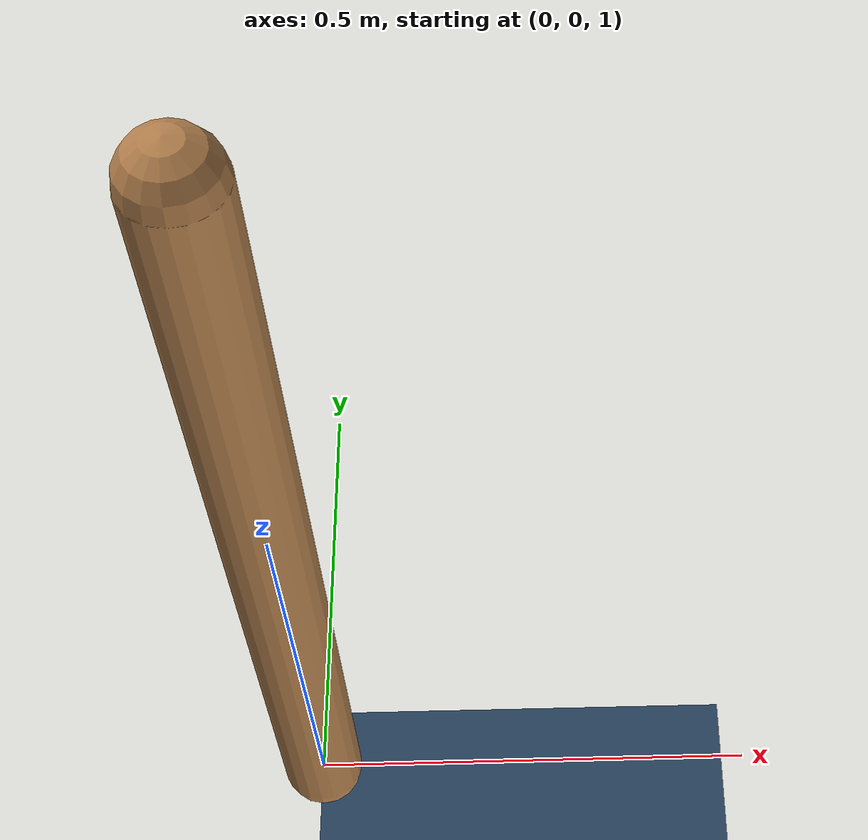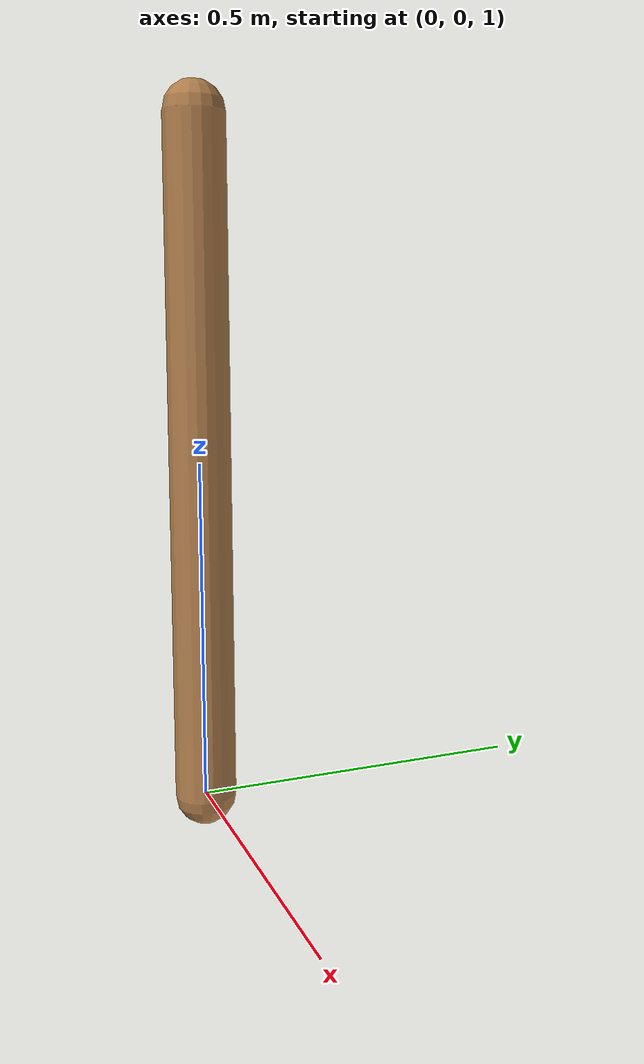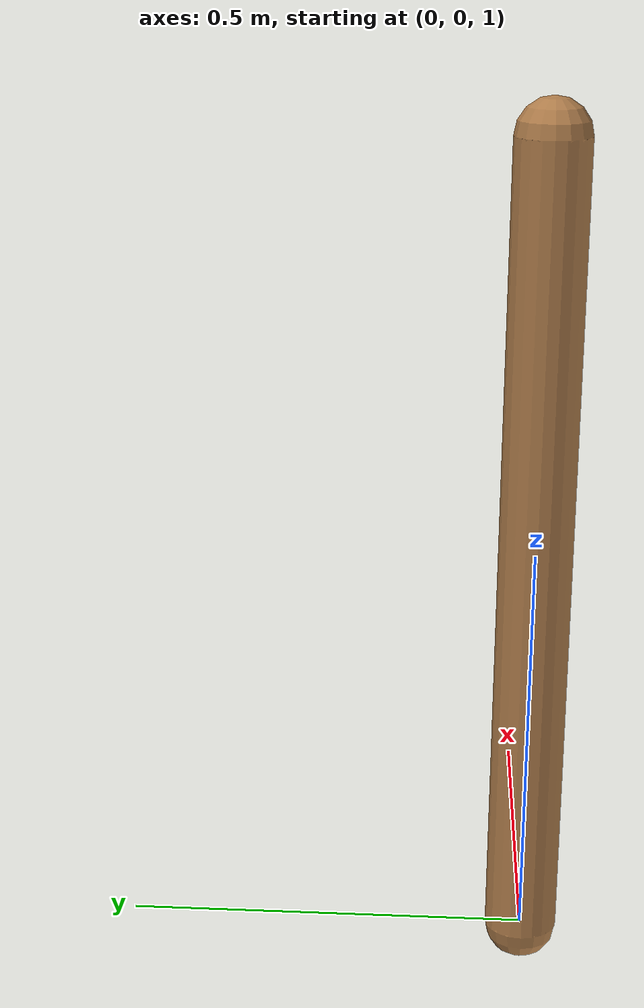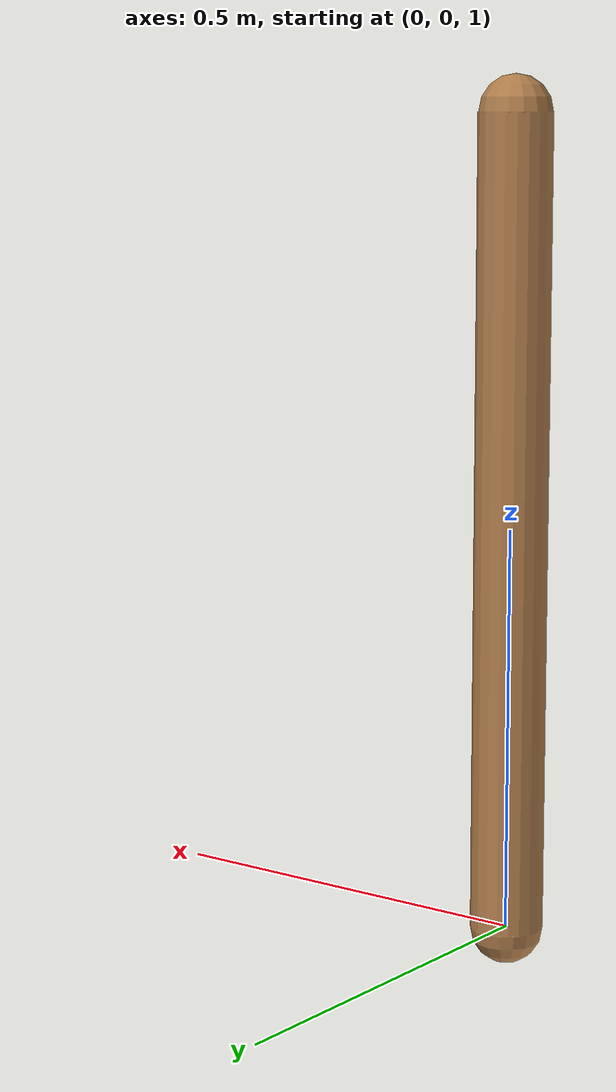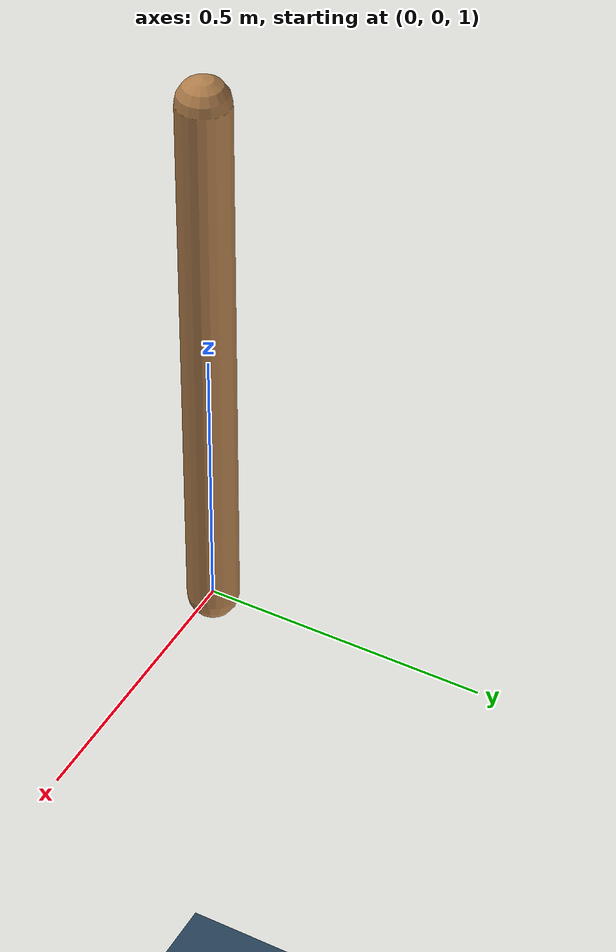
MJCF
<mujoco model="pendulum">
  <include file="./common/visual.xml"/>
  <include file="./common/skybox.xml"/>
  <include file="./common/materials.xml"/>

  <option timestep="0.01" integrator="RK4">
    <flag contact="disable" energy="enable"/>
  </option>

  <default>
    <default class="pole">
      <joint type="hinge" axis="0 1 0"  damping="0.0"/>
      <geom type="capsule" fromto="0 0 0 0 0 1" size="0.045" material="self" mass="1"/>
    </default>
  </default>

  <worldbody>
    <light name="light" pos="0 0 6"/>
    <camera name="fixed" pos="0 -4 1" zaxis="0 -1 0"/>
    <camera name="lookatpole" mode="targetbody" target="pole_1" pos="0 -2 2"/>
    <geom name="floor" pos="0 0 -0.05" size="4 4 .2" type="plane" material="grid"/>
    <body name="pole_1" childclass="pole" pos='0 0 1.0'>
      <joint name="hinge_1"/>
      <geom name="pole_1"/>

    </body>
  </worldbody>

  <actuator>
    <motor name="torque" joint="hinge_1" gear="40" ctrlrange="-1 1" ctrllimited="true"/>
  </actuator>
</mujoco>

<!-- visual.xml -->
<mujoco>
    <visual>
        <headlight ambient=".4 .4 .4" diffuse=".8 .8 .8" specular="0.1 0.1 0.1"/>
        <map znear=".01"/>
        <quality shadowsize="2048"/>
    </visual>
</mujoco>

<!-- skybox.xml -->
<mujoco>
    <asset>
        <texture name="skybox" type="skybox" builtin="gradient" rgb1=".4 .6 .8" rgb2="0 0 0"
                 width="800" height="800" mark="random" markrgb="1 1 1"/>
    </asset>
</mujoco>

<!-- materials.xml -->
<!--
Common textures, colors and materials to be used throughout this suite. Some
materials such as xxx_highlight are activated on occurence of certain events,
for example receiving a positive reward.
-->
<mujoco>
    <asset>
        <texture name="grid" type="2d" builtin="checker" rgb1=".1 .2 .3" rgb2=".2 .3 .4" width="300" height="300" mark="edge" markrgb=".2 .3 .4"/>
        <material name="grid" texture="grid" texrepeat="1 1" texuniform="true" reflectance=".2"/>
        <material name="self" rgba=".7 .5 .3 1"/>
        <material name="self_default" rgba=".7 .5 .3 1"/>
        <material name="self_highlight" rgba="0 .5 .3 1"/>
        <material name="effector" rgba=".7 .4 .2 1"/>
        <material name="effector_default" rgba=".7 .4 .2 1"/>
        <material name="effector_highlight" rgba="0 .5 .3 1"/>
        <material name="decoration" rgba=".3 .5 .7 1"/>
        <material name="eye" rgba="0 .2 1 1"/>
        <material name="target" rgba=".6 .3 .3 1"/>
        <material name="target_default" rgba=".6 .3 .3 1"/>
        <material name="target_highlight" rgba=".6 .3 .3 .4"/>
        <material name="site" rgba=".5 .5 .5 .3"/>
    </asset>
</mujoco>
